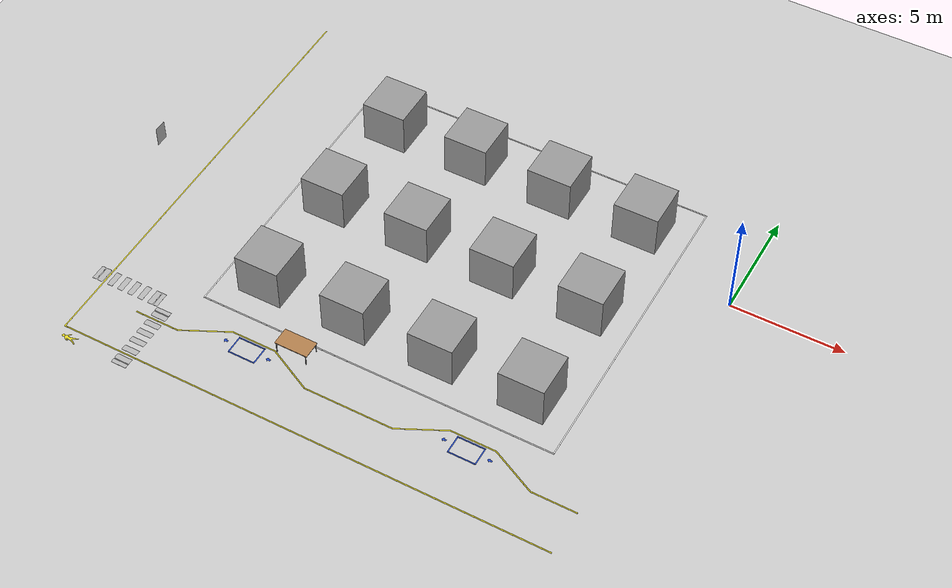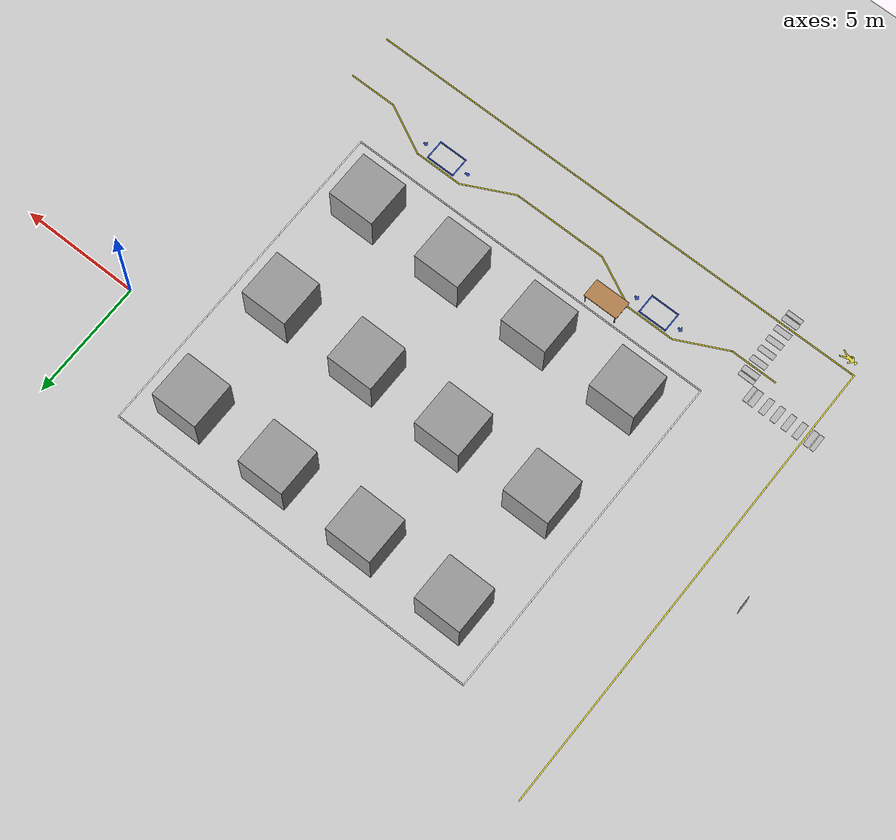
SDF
<sdf version="1.6">
 <world name="default">
  <model name="ground_plane">
   <static>1</static>
   <link name="link">
    <collision name="collision">
     <geometry><plane><normal>0 0 1</normal><size>100 100</size></plane></geometry>
     <surface><friction><ode><mu>100</mu><mu2>50</mu2></ode></friction></surface>
    </collision>
    <visual name="visual">
     <cast_shadows>0</cast_shadows>
     <geometry><plane><normal>0 0 1</normal><size>100 100</size></plane></geometry>
     <material>
      <script><uri>file://media/materials/scripts/gazebo.material</uri><name>Gazebo/Grey</name></script>
     </material>
    </visual>
   </link>
  </model>
  <model name="line20m">
   <link name="link_0">
    <inertial>
     <mass>1</mass>
     <inertia>
      <ixx>0.166667</ixx>
      <ixy>0</ixy>
      <ixz>0</ixz>
      <iyy>0.166667</iyy>
      <iyz>0</iyz>
      <izz>0.166667</izz>
     </inertia>
    </inertial>
    <visual name="visual">
     <geometry><box><size>0.05 20 0.001</size></box></geometry>
     <material>
      <lighting>1</lighting>
      <script><uri>file://media/materials/scripts/gazebo.material</uri><name>Gazebo/Yellow</name></script>
     </material>
    </visual>
   </link>
   <static>1</static>
   <pose>-22.9002 -3.99821 0 0 -0 0</pose>
  </model>
  <model name="lineWwaitSpot_0">
   <model name="waitSpotWDirection">
    <model name="directionArrow">
     <link name="link_0">
      <inertial>
       <mass>1</mass>
       <inertia>
        <ixx>0.166667</ixx>
        <ixy>0</ixy>
        <ixz>0</ixz>
        <iyy>0.166667</iyy>
        <iyz>0</iyz>
        <izz>0.166667</izz>
       </inertia>
      </inertial>
      <visual name="visual">
       <pose>-0.1 0.018 0 0 -0 -1.5708</pose>
       <geometry>
        <mesh><uri>model://directionArrow/model/model.dae</uri><scale>0.05 0.05 0.001</scale></mesh>
       </geometry>
       <material>
        <lighting>1</lighting>
        <script><uri>file://media/materials/scripts/gazebo.material</uri><name>Gazebo/Blue</name></script>
       </material>
      </visual>
     </link>
     <static>1</static>
     <pose>-1.00461 -0.000715 0 0 -0 0</pose>
    </model>
    <model name="directionArrow_0">
     <link name="link_0">
      <inertial>
       <mass>1</mass>
       <inertia>
        <ixx>0.166667</ixx>
        <ixy>0</ixy>
        <ixz>0</ixz>
        <iyy>0.166667</iyy>
        <iyz>0</iyz>
        <izz>0.166667</izz>
       </inertia>
      </inertial>
      <visual name="visual">
       <pose>-0.1 0.018 0 0 -0 -1.5708</pose>
       <geometry>
        <mesh><uri>model://directionArrow/model/model.dae</uri><scale>0.05 0.05 0.001</scale></mesh>
       </geometry>
       <material>
        <lighting>1</lighting>
        <script><uri>file://media/materials/scripts/gazebo.material</uri><name>Gazebo/Blue</name></script>
       </material>
      </visual>
     </link>
     <static>1</static>
     <pose>1.00339 -0.000935 0 0 -0 0</pose>
    </model>
    <model name="waitSpot">
     <link name="link_4">
      <inertial>
       <mass>1</mass>
       <inertia>
        <ixx>0.166667</ixx>
        <ixy>0</ixy>
        <ixz>0</ixz>
        <iyy>0.166667</iyy>
        <iyz>0</iyz>
        <izz>0.166667</izz>
       </inertia>
      </inertial>
      <visual name="ModelPreview_8::link_4::visual_3">
       <pose>-0.6 0 0 0 -0 0</pose>
       <geometry><box><size>0.05 0.8 0.001</size></box></geometry>
       <material>
        <lighting>1</lighting>
        <script><uri>file://media/materials/scripts/gazebo.material</uri><name>Gazebo/Blue</name></script>
       </material>
      </visual>
      <visual name="ModelPreview_8::link_4::visual_1">
       <pose>0 -0.4 0 0 -0 0</pose>
       <geometry><box><size>1.25 0.05 0.001</size></box></geometry>
       <material>
        <lighting>1</lighting>
        <script><uri>file://media/materials/scripts/gazebo.material</uri><name>Gazebo/Blue</name></script>
       </material>
      </visual>
      <visual name="ModelPreview_8::link_4::visual_2">
       <pose>0.6 0 0 0 -0 0</pose>
       <geometry><box><size>0.05 0.8 0.001</size></box></geometry>
       <material>
        <lighting>1</lighting>
        <script><uri>file://media/materials/scripts/gazebo.material</uri><name>Gazebo/Blue</name></script>
       </material>
      </visual>
      <visual name="visual">
       <pose>0 0.4 0 0 -0 0</pose>
       <geometry><box><size>1.25 0.05 0.001</size></box></geometry>
       <material>
        <lighting>1</lighting>
        <script><uri>file://media/materials/scripts/gazebo.material</uri><name>Gazebo/Blue</name></script>
       </material>
      </visual>
     </link>
     <static>1</static>
     <pose>0.001226 0.00165 0 0 -0 0</pose>
    </model>
    <static>1</static>
    <pose>-5 -0.16 0 0 -0 0</pose>
   </model>
   <model name="roadWwait">
    <link name="link_0">
     <inertial>
      <mass>1</mass>
      <inertia>
       <ixx>0.166667</ixx>
       <ixy>0</ixy>
       <ixz>0</ixz>
       <iyy>0.166667</iyy>
       <iyz>0</iyz>
       <izz>0.166667</izz>
      </inertia>
     </inertial>
     <visual name="ModelPreview_0::link_0::visual_2">
      <pose>-3 -0.5 0 0 -0 0.463647</pose>
      <geometry><box><size>2.265 0.05 0.001</size></box></geometry>
      <material>
       <lighting>1</lighting>
       <script><uri>file://media/materials/scripts/gazebo.material</uri><name>Gazebo/Yellow</name></script>
      </material>
     </visual>
     <visual name="ModelPreview_0::link_0::visual_3">
      <pose>5 -1 0 0 -0 0</pose>
      <geometry><box><size>2 0.05 0.001</size></box></geometry>
      <material>
       <lighting>1</lighting>
       <script><uri>file://media/materials/scripts/gazebo.material</uri><name>Gazebo/Yellow</name></script>
      </material>
     </visual>
     <visual name="visual">
      <geometry><box><size>4 0.05 0.001</size></box></geometry>
      <material>
       <lighting>1</lighting>
       <script><uri>file://media/materials/scripts/gazebo.material</uri><name>Gazebo/Yellow</name></script>
      </material>
     </visual>
     <visual name="ModelPreview_0::link_0::visual_1">
      <pose>3 -0.5 0 0 0 -0.463647</pose>
      <geometry><box><size>2.265 0.05 0.001</size></box></geometry>
      <material>
       <lighting>1</lighting>
       <script><uri>file://media/materials/scripts/gazebo.material</uri><name>Gazebo/Yellow</name></script>
      </material>
     </visual>
     <visual name="ModelPreview_0::link_0::visual_4">
      <pose>-5 -1 0 0 -0 0</pose>
      <geometry><box><size>2 0.05 0.001</size></box></geometry>
      <material>
       <lighting>1</lighting>
       <script><uri>file://media/materials/scripts/gazebo.material</uri><name>Gazebo/Yellow</name></script>
      </material>
     </visual>
     <visual name="ModelPreview_0::link_0::visual_5">
      <pose>7 -0.5 0 0 -0 0.463647</pose>
      <geometry><box><size>2.265 0.05 0.001</size></box></geometry>
      <material>
       <lighting>1</lighting>
       <script><uri>file://media/materials/scripts/gazebo.material</uri><name>Gazebo/Yellow</name></script>
      </material>
     </visual>
     <visual name="ModelPreview_0::link_0::visual_6">
      <pose>-7 -0.5 0 0 0 -0.463647</pose>
      <geometry><box><size>2.265 0.05 0.001</size></box></geometry>
      <material>
       <lighting>1</lighting>
       <script><uri>file://media/materials/scripts/gazebo.material</uri><name>Gazebo/Yellow</name></script>
      </material>
     </visual>
     <visual name="ModelPreview_0::link_0::visual_7">
      <pose>9 0 0 0 -0 0</pose>
      <geometry><box><size>2 0.05 0.001</size></box></geometry>
      <material>
       <lighting>1</lighting>
       <script><uri>file://media/materials/scripts/gazebo.material</uri><name>Gazebo/Yellow</name></script>
      </material>
     </visual>
     <visual name="ModelPreview_0::link_0::visual_8">
      <pose>-9 0 0 0 -0 0</pose>
      <geometry><box><size>2 0.05 0.001</size></box></geometry>
      <material>
       <lighting>1</lighting>
       <script><uri>file://media/materials/scripts/gazebo.material</uri><name>Gazebo/Yellow</name></script>
      </material>
     </visual>
    </link>
    <static>1</static>
    <pose>-0.002412 0.326587 0 0 -0 0</pose>
   </model>
   <model name="waitSpotWDirection_0">
    <model name="directionArrow">
     <link name="link_0">
      <inertial>
       <mass>1</mass>
       <inertia>
        <ixx>0.166667</ixx>
        <ixy>0</ixy>
        <ixz>0</ixz>
        <iyy>0.166667</iyy>
        <iyz>0</iyz>
        <izz>0.166667</izz>
       </inertia>
      </inertial>
      <visual name="visual">
       <pose>-0.1 0.018 0 0 -0 -1.5708</pose>
       <geometry>
        <mesh><uri>model://directionArrow/model/model.dae</uri><scale>0.05 0.05 0.001</scale></mesh>
       </geometry>
       <material>
        <lighting>1</lighting>
        <script><uri>file://media/materials/scripts/gazebo.material</uri><name>Gazebo/Blue</name></script>
       </material>
      </visual>
     </link>
     <static>1</static>
     <pose>-1.00461 -0.000715 0 0 -0 0</pose>
    </model>
    <model name="directionArrow_0">
     <link name="link_0">
      <inertial>
       <mass>1</mass>
       <inertia>
        <ixx>0.166667</ixx>
        <ixy>0</ixy>
        <ixz>0</ixz>
        <iyy>0.166667</iyy>
        <iyz>0</iyz>
        <izz>0.166667</izz>
       </inertia>
      </inertial>
      <visual name="visual">
       <pose>-0.1 0.018 0 0 -0 -1.5708</pose>
       <geometry>
        <mesh><uri>model://directionArrow/model/model.dae</uri><scale>0.05 0.05 0.001</scale></mesh>
       </geometry>
       <material>
        <lighting>1</lighting>
        <script><uri>file://media/materials/scripts/gazebo.material</uri><name>Gazebo/Blue</name></script>
       </material>
      </visual>
     </link>
     <static>1</static>
     <pose>1.00339 -0.000935 0 0 -0 0</pose>
    </model>
    <model name="waitSpot">
     <link name="link_4">
      <inertial>
       <mass>1</mass>
       <inertia>
        <ixx>0.166667</ixx>
        <ixy>0</ixy>
        <ixz>0</ixz>
        <iyy>0.166667</iyy>
        <iyz>0</iyz>
        <izz>0.166667</izz>
       </inertia>
      </inertial>
      <visual name="ModelPreview_8::link_4::visual_3">
       <pose>-0.6 0 0 0 -0 0</pose>
       <geometry><box><size>0.05 0.8 0.001</size></box></geometry>
       <material>
        <lighting>1</lighting>
        <script><uri>file://media/materials/scripts/gazebo.material</uri><name>Gazebo/Blue</name></script>
       </material>
      </visual>
      <visual name="ModelPreview_8::link_4::visual_1">
       <pose>0 -0.4 0 0 -0 0</pose>
       <geometry><box><size>1.25 0.05 0.001</size></box></geometry>
       <material>
        <lighting>1</lighting>
        <script><uri>file://media/materials/scripts/gazebo.material</uri><name>Gazebo/Blue</name></script>
       </material>
      </visual>
      <visual name="ModelPreview_8::link_4::visual_2">
       <pose>0.6 0 0 0 -0 0</pose>
       <geometry><box><size>0.05 0.8 0.001</size></box></geometry>
       <material>
        <lighting>1</lighting>
        <script><uri>file://media/materials/scripts/gazebo.material</uri><name>Gazebo/Blue</name></script>
       </material>
      </visual>
      <visual name="visual">
       <pose>0 0.4 0 0 -0 0</pose>
       <geometry><box><size>1.25 0.05 0.001</size></box></geometry>
       <material>
        <lighting>1</lighting>
        <script><uri>file://media/materials/scripts/gazebo.material</uri><name>Gazebo/Blue</name></script>
       </material>
      </visual>
     </link>
     <static>1</static>
     <pose>0.001226 0.00165 0 0 -0 0</pose>
    </model>
    <static>1</static>
    <pose>5 -0.16 0 0 -0 0</pose>
   </model>
   <static>1</static>
   <pose>-10.83 -11.6377 0 0 0 -3.14159</pose>
  </model>
  <model name="CNCUnit">
   <link name="link_2">
    <inertial>
     <mass>1</mass>
     <inertia>
      <ixx>0.166667</ixx>
      <ixy>0</ixy>
      <ixz>0</ixz>
      <iyy>0.166667</iyy>
      <iyz>0</iyz>
      <izz>0.166667</izz>
     </inertia>
    </inertial>
    <visual name="ModelPreview_4::link_2::visual_2">
     <pose>-2 0 1 0 -0 0</pose>
     <geometry><box><size>2 2 2</size></box></geometry>
     <material>
      <lighting>1</lighting>
      <script><uri>file://media/materials/scripts/gazebo.material</uri><name>Gazebo/Grey</name></script>
      <shader type="vertex"><normal_map>__default__</normal_map></shader>
      <ambient>0.3 0.3 0.3 1</ambient>
      <diffuse>0.7 0.7 0.7 1</diffuse>
      <specular>0.01 0.01 0.01 1</specular>
      <emissive>0 0 0 1</emissive>
     </material>
    </visual>
    <visual name="ModelPreview_4::link_2::visual_5">
     <pose>-2 5 1 0 -0 0</pose>
     <geometry><box><size>2 2 2</size></box></geometry>
     <material>
      <lighting>1</lighting>
      <script><uri>file://media/materials/scripts/gazebo.material</uri><name>Gazebo/Grey</name></script>
      <shader type="vertex"><normal_map>__default__</normal_map></shader>
      <ambient>0.3 0.3 0.3 1</ambient>
      <diffuse>0.7 0.7 0.7 1</diffuse>
      <specular>0.01 0.01 0.01 1</specular>
      <emissive>0 0 0 1</emissive>
     </material>
    </visual>
    <visual name="ModelPreview_4::link_2::visual_6">
     <pose>2 5 1 0 -0 0</pose>
     <geometry><box><size>2 2 2</size></box></geometry>
     <material>
      <lighting>1</lighting>
      <script><uri>file://media/materials/scripts/gazebo.material</uri><name>Gazebo/Grey</name></script>
      <shader type="vertex"><normal_map>__default__</normal_map></shader>
      <ambient>0.3 0.3 0.3 1</ambient>
      <diffuse>0.7 0.7 0.7 1</diffuse>
      <specular>0.01 0.01 0.01 1</specular>
      <emissive>0 0 0 1</emissive>
     </material>
    </visual>
    <visual name="ModelPreview_4::link_2::visual_1">
     <pose>6 0 1 0 -0 0</pose>
     <geometry><box><size>2 2 2</size></box></geometry>
     <material>
      <lighting>1</lighting>
      <script><uri>file://media/materials/scripts/gazebo.material</uri><name>Gazebo/Grey</name></script>
      <shader type="vertex"><normal_map>__default__</normal_map></shader>
      <ambient>0.3 0.3 0.3 1</ambient>
      <diffuse>0.7 0.7 0.7 1</diffuse>
      <specular>0.01 0.01 0.01 1</specular>
      <emissive>0 0 0 1</emissive>
     </material>
    </visual>
    <visual name="visual">
     <pose>2 0 1 0 -0 0</pose>
     <geometry><box><size>2 2 2</size></box></geometry>
     <material>
      <lighting>1</lighting>
      <script><uri>file://media/materials/scripts/gazebo.material</uri><name>Gazebo/Grey</name></script>
      <shader type="vertex"><normal_map>__default__</normal_map></shader>
      <ambient>0.3 0.3 0.3 1</ambient>
      <diffuse>0.7 0.7 0.7 1</diffuse>
      <specular>0.01 0.01 0.01 1</specular>
      <emissive>0 0 0 1</emissive>
     </material>
    </visual>
    <visual name="ModelPreview_4::link_2::visual_4">
     <pose>-6 5 1 0 -0 0</pose>
     <geometry><box><size>2 2 2</size></box></geometry>
     <material>
      <lighting>1</lighting>
      <script><uri>file://media/materials/scripts/gazebo.material</uri><name>Gazebo/Grey</name></script>
      <shader type="vertex"><normal_map>__default__</normal_map></shader>
      <ambient>0.3 0.3 0.3 1</ambient>
      <diffuse>0.7 0.7 0.7 1</diffuse>
      <specular>0.01 0.01 0.01 1</specular>
      <emissive>0 0 0 1</emissive>
     </material>
    </visual>
    <visual name="ModelPreview_4::link_2::visual_7">
     <pose>6 5 1 0 -0 0</pose>
     <geometry><box><size>2 2 2</size></box></geometry>
     <material>
      <lighting>1</lighting>
      <script><uri>file://media/materials/scripts/gazebo.material</uri><name>Gazebo/Grey</name></script>
      <shader type="vertex"><normal_map>__default__</normal_map></shader>
      <ambient>0.3 0.3 0.3 1</ambient>
      <diffuse>0.7 0.7 0.7 1</diffuse>
      <specular>0.01 0.01 0.01 1</specular>
      <emissive>0 0 0 1</emissive>
     </material>
    </visual>
    <visual name="ModelPreview_4::link_2::visual_3">
     <pose>-6 0 1 0 -0 0</pose>
     <geometry><box><size>2 2 2</size></box></geometry>
     <material>
      <lighting>1</lighting>
      <script><uri>file://media/materials/scripts/gazebo.material</uri><name>Gazebo/Grey</name></script>
      <shader type="vertex"><normal_map>__default__</normal_map></shader>
      <ambient>0.3 0.3 0.3 1</ambient>
      <diffuse>0.7 0.7 0.7 1</diffuse>
      <specular>0.01 0.01 0.01 1</specular>
      <emissive>0 0 0 1</emissive>
     </material>
    </visual>
    <visual name="ModelPreview_4::link_2::visual_8">
     <pose>-6 -5 1 0 -0 0</pose>
     <geometry><box><size>2 2 2</size></box></geometry>
     <material>
      <lighting>1</lighting>
      <script><uri>file://media/materials/scripts/gazebo.material</uri><name>Gazebo/Grey</name></script>
      <shader type="vertex"><normal_map>__default__</normal_map></shader>
      <ambient>0.3 0.3 0.3 1</ambient>
      <diffuse>0.7 0.7 0.7 1</diffuse>
      <specular>0.01 0.01 0.01 1</specular>
      <emissive>0 0 0 1</emissive>
     </material>
    </visual>
    <visual name="ModelPreview_4::link_2::visual_9">
     <pose>-2 -5 1 0 -0 0</pose>
     <geometry><box><size>2 2 2</size></box></geometry>
     <material>
      <lighting>1</lighting>
      <script><uri>file://media/materials/scripts/gazebo.material</uri><name>Gazebo/Grey</name></script>
      <shader type="vertex"><normal_map>__default__</normal_map></shader>
      <ambient>0.3 0.3 0.3 1</ambient>
      <diffuse>0.7 0.7 0.7 1</diffuse>
      <specular>0.01 0.01 0.01 1</specular>
      <emissive>0 0 0 1</emissive>
     </material>
    </visual>
    <visual name="ModelPreview_4::link_2::visual_10">
     <pose>2 -5 1 0 -0 0</pose>
     <geometry><box><size>2 2 2</size></box></geometry>
     <material>
      <lighting>1</lighting>
      <script><uri>file://media/materials/scripts/gazebo.material</uri><name>Gazebo/Grey</name></script>
      <shader type="vertex"><normal_map>__default__</normal_map></shader>
      <ambient>0.3 0.3 0.3 1</ambient>
      <diffuse>0.7 0.7 0.7 1</diffuse>
      <specular>0.01 0.01 0.01 1</specular>
      <emissive>0 0 0 1</emissive>
     </material>
    </visual>
    <visual name="ModelPreview_4::link_2::visual_11">
     <pose>6 -5 1 0 -0 0</pose>
     <geometry><box><size>2 2 2</size></box></geometry>
     <material>
      <lighting>1</lighting>
      <script><uri>file://media/materials/scripts/gazebo.material</uri><name>Gazebo/Grey</name></script>
      <shader type="vertex"><normal_map>__default__</normal_map></shader>
      <ambient>0.3 0.3 0.3 1</ambient>
      <diffuse>0.7 0.7 0.7 1</diffuse>
      <specular>0.01 0.01 0.01 1</specular>
      <emissive>0 0 0 1</emissive>
     </material>
    </visual>
    <visual name="ModelPreview_4::link_2::visual_12">
     <pose>0 -7 0 0 -0 0</pose>
     <geometry><box><size>16.05 0.05 0.001</size></box></geometry>
     <material>
      <lighting>1</lighting>
      <script><uri>file://media/materials/scripts/gazebo.material</uri><name>Gazebo/White</name></script>
     </material>
    </visual>
    <visual name="ModelPreview_4::link_2::visual_13">
     <pose>0 7 0 0 -0 0</pose>
     <geometry><box><size>16.05 0.05 0.001</size></box></geometry>
     <material>
      <lighting>1</lighting>
      <script><uri>file://media/materials/scripts/gazebo.material</uri><name>Gazebo/White</name></script>
     </material>
    </visual>
    <visual name="ModelPreview_4::link_2::visual_14">
     <pose>8 0 0 0 -0 0</pose>
     <geometry><box><size>0.05 14 0.001</size></box></geometry>
     <material>
      <lighting>1</lighting>
      <script><uri>file://media/materials/scripts/gazebo.material</uri><name>Gazebo/White</name></script>
      <emissive>0 0 0 1</emissive>
     </material>
    </visual>
    <visual name="ModelPreview_4::link_2::visual_15">
     <pose>-8 0 0 0 -0 0</pose>
     <geometry><box><size>0.05 14 0.001</size></box></geometry>
     <material>
      <lighting>1</lighting>
      <script><uri>file://media/materials/scripts/gazebo.material</uri><name>Gazebo/White</name></script>
     </material>
    </visual>
    <collision name="collision_9">
     <pose>6 -5 1 0 -0 0</pose>
     <geometry><box><size>2 2 2</size></box></geometry>
     <surface>
      <friction>
       <ode><mu>1</mu><mu2>1</mu2><fdir1>0 0 0</fdir1><slip1>0</slip1><slip2>0</slip2></ode>
       <torsional>
        <coefficient>1</coefficient>
        <patch_radius>0</patch_radius>
        <surface_radius>0</surface_radius>
        <use_patch_radius>1</use_patch_radius>
        <ode><slip>0</slip></ode>
       </torsional>
      </friction>
      <bounce><restitution_coefficient>0</restitution_coefficient><threshold>1e+06</threshold></bounce>
      <contact>
       <collide_without_contact>0</collide_without_contact>
       <collide_without_contact_bitmask>1</collide_without_contact_bitmask>
       <collide_bitmask>1</collide_bitmask>
       <ode>
        <soft_cfm>0</soft_cfm>
        <soft_erp>0.2</soft_erp>
        <kp>1e+13</kp>
        <kd>1</kd>
        <max_vel>0.01</max_vel>
        <min_depth>0</min_depth>
       </ode>
       <bullet>
        <split_impulse>1</split_impulse>
        <split_impulse_penetration_threshold>-0.01</split_impulse_penetration_threshold>
        <soft_cfm>0</soft_cfm>
        <soft_erp>0.2</soft_erp>
        <kp>1e+13</kp>
        <kd>1</kd>
       </bullet>
      </contact>
     </surface>
    </collision>
    <collision name="collision_6">
     <pose>-2 5 1 0 -0 0</pose>
     <geometry><box><size>2 2 2</size></box></geometry>
     <surface>
      <friction>
       <ode><mu>1</mu><mu2>1</mu2><fdir1>0 0 0</fdir1><slip1>0</slip1><slip2>0</slip2></ode>
       <torsional>
        <coefficient>1</coefficient>
        <patch_radius>0</patch_radius>
        <surface_radius>0</surface_radius>
        <use_patch_radius>1</use_patch_radius>
        <ode><slip>0</slip></ode>
       </torsional>
      </friction>
      <bounce><restitution_coefficient>0</restitution_coefficient><threshold>1e+06</threshold></bounce>
      <contact>
       <collide_without_contact>0</collide_without_contact>
       <collide_without_contact_bitmask>1</collide_without_contact_bitmask>
       <collide_bitmask>1</collide_bitmask>
       <ode>
        <soft_cfm>0</soft_cfm>
        <soft_erp>0.2</soft_erp>
        <kp>1e+13</kp>
        <kd>1</kd>
        <max_vel>0.01</max_vel>
        <min_depth>0</min_depth>
       </ode>
       <bullet>
        <split_impulse>1</split_impulse>
        <split_impulse_penetration_threshold>-0.01</split_impulse_penetration_threshold>
        <soft_cfm>0</soft_cfm>
        <soft_erp>0.2</soft_erp>
        <kp>1e+13</kp>
        <kd>1</kd>
       </bullet>
      </contact>
     </surface>
    </collision>
    <collision name="collision">
     <pose>2 0 1 0 -0 0</pose>
     <geometry><box><size>2 2 2</size></box></geometry>
     <surface>
      <friction>
       <ode><mu>1</mu><mu2>1</mu2><fdir1>0 0 0</fdir1><slip1>0</slip1><slip2>0</slip2></ode>
       <torsional>
        <coefficient>1</coefficient>
        <patch_radius>0</patch_radius>
        <surface_radius>0</surface_radius>
        <use_patch_radius>1</use_patch_radius>
        <ode><slip>0</slip></ode>
       </torsional>
      </friction>
      <bounce><restitution_coefficient>0</restitution_coefficient><threshold>1e+06</threshold></bounce>
      <contact>
       <collide_without_contact>0</collide_without_contact>
       <collide_without_contact_bitmask>1</collide_without_contact_bitmask>
       <collide_bitmask>1</collide_bitmask>
       <ode>
        <soft_cfm>0</soft_cfm>
        <soft_erp>0.2</soft_erp>
        <kp>1e+13</kp>
        <kd>1</kd>
        <max_vel>0.01</max_vel>
        <min_depth>0</min_depth>
       </ode>
       <bullet>
        <split_impulse>1</split_impulse>
        <split_impulse_penetration_threshold>-0.01</split_impulse_penetration_threshold>
        <soft_cfm>0</soft_cfm>
        <soft_erp>0.2</soft_erp>
        <kp>1e+13</kp>
        <kd>1</kd>
       </bullet>
      </contact>
     </surface>
    </collision>
    <collision name="collision_10">
     <pose>-2 -5 1 0 -0 0</pose>
     <geometry><box><size>2 2 2</size></box></geometry>
     <surface>
      <friction>
       <ode><mu>1</mu><mu2>1</mu2><fdir1>0 0 0</fdir1><slip1>0</slip1><slip2>0</slip2></ode>
       <torsional>
        <coefficient>1</coefficient>
        <patch_radius>0</patch_radius>
        <surface_radius>0</surface_radius>
        <use_patch_radius>1</use_patch_radius>
        <ode><slip>0</slip></ode>
       </torsional>
      </friction>
      <bounce><restitution_coefficient>0</restitution_coefficient><threshold>1e+06</threshold></bounce>
      <contact>
       <collide_without_contact>0</collide_without_contact>
       <collide_without_contact_bitmask>1</collide_without_contact_bitmask>
       <collide_bitmask>1</collide_bitmask>
       <ode>
        <soft_cfm>0</soft_cfm>
        <soft_erp>0.2</soft_erp>
        <kp>1e+13</kp>
        <kd>1</kd>
        <max_vel>0.01</max_vel>
        <min_depth>0</min_depth>
       </ode>
       <bullet>
        <split_impulse>1</split_impulse>
        <split_impulse_penetration_threshold>-0.01</split_impulse_penetration_threshold>
        <soft_cfm>0</soft_cfm>
        <soft_erp>0.2</soft_erp>
        <kp>1e+13</kp>
        <kd>1</kd>
       </bullet>
      </contact>
     </surface>
    </collision>
    <collision name="collision_4">
     <pose>2 5 1 0 -0 0</pose>
     <geometry><box><size>2 2 2</size></box></geometry>
     <surface>
      <friction>
       <ode><mu>1</mu><mu2>1</mu2><fdir1>0 0 0</fdir1><slip1>0</slip1><slip2>0</slip2></ode>
       <torsional>
        <coefficient>1</coefficient>
        <patch_radius>0</patch_radius>
        <surface_radius>0</surface_radius>
        <use_patch_radius>1</use_patch_radius>
        <ode><slip>0</slip></ode>
       </torsional>
      </friction>
      <bounce><restitution_coefficient>0</restitution_coefficient><threshold>1e+06</threshold></bounce>
      <contact>
       <collide_without_contact>0</collide_without_contact>
       <collide_without_contact_bitmask>1</collide_without_contact_bitmask>
       <collide_bitmask>1</collide_bitmask>
       <ode>
        <soft_cfm>0</soft_cfm>
        <soft_erp>0.2</soft_erp>
        <kp>1e+13</kp>
        <kd>1</kd>
        <max_vel>0.01</max_vel>
        <min_depth>0</min_depth>
       </ode>
       <bullet>
        <split_impulse>1</split_impulse>
        <split_impulse_penetration_threshold>-0.01</split_impulse_penetration_threshold>
        <soft_cfm>0</soft_cfm>
        <soft_erp>0.2</soft_erp>
        <kp>1e+13</kp>
        <kd>1</kd>
       </bullet>
      </contact>
     </surface>
    </collision>
    <collision name="collision_7">
     <pose>-6 5 1 0 -0 0</pose>
     <geometry><box><size>2 2 2</size></box></geometry>
     <surface>
      <friction>
       <ode><mu>1</mu><mu2>1</mu2><fdir1>0 0 0</fdir1><slip1>0</slip1><slip2>0</slip2></ode>
       <torsional>
        <coefficient>1</coefficient>
        <patch_radius>0</patch_radius>
        <surface_radius>0</surface_radius>
        <use_patch_radius>1</use_patch_radius>
        <ode><slip>0</slip></ode>
       </torsional>
      </friction>
      <bounce><restitution_coefficient>0</restitution_coefficient><threshold>1e+06</threshold></bounce>
      <contact>
       <collide_without_contact>0</collide_without_contact>
       <collide_without_contact_bitmask>1</collide_without_contact_bitmask>
       <collide_bitmask>1</collide_bitmask>
       <ode>
        <soft_cfm>0</soft_cfm>
        <soft_erp>0.2</soft_erp>
        <kp>1e+13</kp>
        <kd>1</kd>
        <max_vel>0.01</max_vel>
        <min_depth>0</min_depth>
       </ode>
       <bullet>
        <split_impulse>1</split_impulse>
        <split_impulse_penetration_threshold>-0.01</split_impulse_penetration_threshold>
        <soft_cfm>0</soft_cfm>
        <soft_erp>0.2</soft_erp>
        <kp>1e+13</kp>
        <kd>1</kd>
       </bullet>
      </contact>
     </surface>
    </collision>
    <collision name="collision_1">
     <pose>-2 0 1 0 -0 0</pose>
     <geometry><box><size>2 2 2</size></box></geometry>
     <surface>
      <friction>
       <ode><mu>1</mu><mu2>1</mu2><fdir1>0 0 0</fdir1><slip1>0</slip1><slip2>0</slip2></ode>
       <torsional>
        <coefficient>1</coefficient>
        <patch_radius>0</patch_radius>
        <surface_radius>0</surface_radius>
        <use_patch_radius>1</use_patch_radius>
        <ode><slip>0</slip></ode>
       </torsional>
      </friction>
      <bounce><restitution_coefficient>0</restitution_coefficient><threshold>1e+06</threshold></bounce>
      <contact>
       <collide_without_contact>0</collide_without_contact>
       <collide_without_contact_bitmask>1</collide_without_contact_bitmask>
       <collide_bitmask>1</collide_bitmask>
       <ode>
        <soft_cfm>0</soft_cfm>
        <soft_erp>0.2</soft_erp>
        <kp>1e+13</kp>
        <kd>1</kd>
        <max_vel>0.01</max_vel>
        <min_depth>0</min_depth>
       </ode>
       <bullet>
        <split_impulse>1</split_impulse>
        <split_impulse_penetration_threshold>-0.01</split_impulse_penetration_threshold>
        <soft_cfm>0</soft_cfm>
        <soft_erp>0.2</soft_erp>
        <kp>1e+13</kp>
        <kd>1</kd>
       </bullet>
      </contact>
     </surface>
    </collision>
    <collision name="collision_5">
     <pose>6 5 1 0 -0 0</pose>
     <geometry><box><size>2 2 2</size></box></geometry>
     <surface>
      <friction>
       <ode><mu>1</mu><mu2>1</mu2><fdir1>0 0 0</fdir1><slip1>0</slip1><slip2>0</slip2></ode>
       <torsional>
        <coefficient>1</coefficient>
        <patch_radius>0</patch_radius>
        <surface_radius>0</surface_radius>
        <use_patch_radius>1</use_patch_radius>
        <ode><slip>0</slip></ode>
       </torsional>
      </friction>
      <bounce><restitution_coefficient>0</restitution_coefficient><threshold>1e+06</threshold></bounce>
      <contact>
       <collide_without_contact>0</collide_without_contact>
       <collide_without_contact_bitmask>1</collide_without_contact_bitmask>
       <collide_bitmask>1</collide_bitmask>
       <ode>
        <soft_cfm>0</soft_cfm>
        <soft_erp>0.2</soft_erp>
        <kp>1e+13</kp>
        <kd>1</kd>
        <max_vel>0.01</max_vel>
        <min_depth>0</min_depth>
       </ode>
       <bullet>
        <split_impulse>1</split_impulse>
        <split_impulse_penetration_threshold>-0.01</split_impulse_penetration_threshold>
        <soft_cfm>0</soft_cfm>
        <soft_erp>0.2</soft_erp>
        <kp>1e+13</kp>
        <kd>1</kd>
       </bullet>
      </contact>
     </surface>
    </collision>
    <collision name="collision_3">
     <pose>6 0 1 0 -0 0</pose>
     <geometry><box><size>2 2 2</size></box></geometry>
     <surface>
      <friction>
       <ode><mu>1</mu><mu2>1</mu2><fdir1>0 0 0</fdir1><slip1>0</slip1><slip2>0</slip2></ode>
       <torsional>
        <coefficient>1</coefficient>
        <patch_radius>0</patch_radius>
        <surface_radius>0</surface_radius>
        <use_patch_radius>1</use_patch_radius>
        <ode><slip>0</slip></ode>
       </torsional>
      </friction>
      <bounce><restitution_coefficient>0</restitution_coefficient><threshold>1e+06</threshold></bounce>
      <contact>
       <collide_without_contact>0</collide_without_contact>
       <collide_without_contact_bitmask>1</collide_without_contact_bitmask>
       <collide_bitmask>1</collide_bitmask>
       <ode>
        <soft_cfm>0</soft_cfm>
        <soft_erp>0.2</soft_erp>
        <kp>1e+13</kp>
        <kd>1</kd>
        <max_vel>0.01</max_vel>
        <min_depth>0</min_depth>
       </ode>
       <bullet>
        <split_impulse>1</split_impulse>
        <split_impulse_penetration_threshold>-0.01</split_impulse_penetration_threshold>
        <soft_cfm>0</soft_cfm>
        <soft_erp>0.2</soft_erp>
        <kp>1e+13</kp>
        <kd>1</kd>
       </bullet>
      </contact>
     </surface>
    </collision>
    <collision name="collision_2">
     <pose>-6 0 1 0 -0 0</pose>
     <geometry><box><size>2 2 2</size></box></geometry>
     <surface>
      <friction>
       <ode><mu>1</mu><mu2>1</mu2><fdir1>0 0 0</fdir1><slip1>0</slip1><slip2>0</slip2></ode>
       <torsional>
        <coefficient>1</coefficient>
        <patch_radius>0</patch_radius>
        <surface_radius>0</surface_radius>
        <use_patch_radius>1</use_patch_radius>
        <ode><slip>0</slip></ode>
       </torsional>
      </friction>
      <bounce><restitution_coefficient>0</restitution_coefficient><threshold>1e+06</threshold></bounce>
      <contact>
       <collide_without_contact>0</collide_without_contact>
       <collide_without_contact_bitmask>1</collide_without_contact_bitmask>
       <collide_bitmask>1</collide_bitmask>
       <ode>
        <soft_cfm>0</soft_cfm>
        <soft_erp>0.2</soft_erp>
        <kp>1e+13</kp>
        <kd>1</kd>
        <max_vel>0.01</max_vel>
        <min_depth>0</min_depth>
       </ode>
       <bullet>
        <split_impulse>1</split_impulse>
        <split_impulse_penetration_threshold>-0.01</split_impulse_penetration_threshold>
        <soft_cfm>0</soft_cfm>
        <soft_erp>0.2</soft_erp>
        <kp>1e+13</kp>
        <kd>1</kd>
       </bullet>
      </contact>
     </surface>
    </collision>
    <collision name="collision_8">
     <pose>2 -5 1 0 -0 0</pose>
     <geometry><box><size>2 2 2</size></box></geometry>
     <surface>
      <friction>
       <ode><mu>1</mu><mu2>1</mu2><fdir1>0 0 0</fdir1><slip1>0</slip1><slip2>0</slip2></ode>
       <torsional>
        <coefficient>1</coefficient>
        <patch_radius>0</patch_radius>
        <surface_radius>0</surface_radius>
        <use_patch_radius>1</use_patch_radius>
        <ode><slip>0</slip></ode>
       </torsional>
      </friction>
      <bounce><restitution_coefficient>0</restitution_coefficient><threshold>1e+06</threshold></bounce>
      <contact>
       <collide_without_contact>0</collide_without_contact>
       <collide_without_contact_bitmask>1</collide_without_contact_bitmask>
       <collide_bitmask>1</collide_bitmask>
       <ode>
        <soft_cfm>0</soft_cfm>
        <soft_erp>0.2</soft_erp>
        <kp>1e+13</kp>
        <kd>1</kd>
        <max_vel>0.01</max_vel>
        <min_depth>0</min_depth>
       </ode>
       <bullet>
        <split_impulse>1</split_impulse>
        <split_impulse_penetration_threshold>-0.01</split_impulse_penetration_threshold>
        <soft_cfm>0</soft_cfm>
        <soft_erp>0.2</soft_erp>
        <kp>1e+13</kp>
        <kd>1</kd>
       </bullet>
      </contact>
     </surface>
    </collision>
    <collision name="collision_11">
     <pose>-6 -5 1 0 -0 0</pose>
     <geometry><box><size>2 2 2</size></box></geometry>
     <surface>
      <friction>
       <ode><mu>1</mu><mu2>1</mu2><fdir1>0 0 0</fdir1><slip1>0</slip1><slip2>0</slip2></ode>
       <torsional>
        <coefficient>1</coefficient>
        <patch_radius>0</patch_radius>
        <surface_radius>0</surface_radius>
        <use_patch_radius>1</use_patch_radius>
        <ode><slip>0</slip></ode>
       </torsional>
      </friction>
      <bounce><restitution_coefficient>0</restitution_coefficient><threshold>1e+06</threshold></bounce>
      <contact>
       <collide_without_contact>0</collide_without_contact>
       <collide_without_contact_bitmask>1</collide_without_contact_bitmask>
       <collide_bitmask>1</collide_bitmask>
       <ode>
        <soft_cfm>0</soft_cfm>
        <soft_erp>0.2</soft_erp>
        <kp>1e+13</kp>
        <kd>1</kd>
        <max_vel>0.01</max_vel>
        <min_depth>0</min_depth>
       </ode>
       <bullet>
        <split_impulse>1</split_impulse>
        <split_impulse_penetration_threshold>-0.01</split_impulse_penetration_threshold>
        <soft_cfm>0</soft_cfm>
        <soft_erp>0.2</soft_erp>
        <kp>1e+13</kp>
        <kd>1</kd>
       </bullet>
      </contact>
     </surface>
    </collision>
    <collision name="collision_12">
     <pose>0 7 0 0 -0 0</pose>
     <geometry><box><size>16.05 0.05 0.001</size></box></geometry>
     <surface>
      <friction>
       <ode><mu>1</mu><mu2>1</mu2><fdir1>0 0 0</fdir1><slip1>0</slip1><slip2>0</slip2></ode>
       <torsional>
        <coefficient>1</coefficient>
        <patch_radius>0</patch_radius>
        <surface_radius>0</surface_radius>
        <use_patch_radius>1</use_patch_radius>
        <ode><slip>0</slip></ode>
       </torsional>
      </friction>
      <bounce><restitution_coefficient>0</restitution_coefficient><threshold>1e+06</threshold></bounce>
      <contact>
       <collide_without_contact>0</collide_without_contact>
       <collide_without_contact_bitmask>1</collide_without_contact_bitmask>
       <collide_bitmask>1</collide_bitmask>
       <ode>
        <soft_cfm>0</soft_cfm>
        <soft_erp>0.2</soft_erp>
        <kp>1e+13</kp>
        <kd>1</kd>
        <max_vel>0.01</max_vel>
        <min_depth>0</min_depth>
       </ode>
       <bullet>
        <split_impulse>1</split_impulse>
        <split_impulse_penetration_threshold>-0.01</split_impulse_penetration_threshold>
        <soft_cfm>0</soft_cfm>
        <soft_erp>0.2</soft_erp>
        <kp>1e+13</kp>
        <kd>1</kd>
       </bullet>
      </contact>
     </surface>
    </collision>
    <collision name="collision_13">
     <pose>0 -7 0 0 -0 0</pose>
     <geometry><box><size>16.05 0.05 0.001</size></box></geometry>
     <surface>
      <friction>
       <ode><mu>1</mu><mu2>1</mu2><fdir1>0 0 0</fdir1><slip1>0</slip1><slip2>0</slip2></ode>
       <torsional>
        <coefficient>1</coefficient>
        <patch_radius>0</patch_radius>
        <surface_radius>0</surface_radius>
        <use_patch_radius>1</use_patch_radius>
        <ode><slip>0</slip></ode>
       </torsional>
      </friction>
      <bounce><restitution_coefficient>0</restitution_coefficient><threshold>1e+06</threshold></bounce>
      <contact>
       <collide_without_contact>0</collide_without_contact>
       <collide_without_contact_bitmask>1</collide_without_contact_bitmask>
       <collide_bitmask>1</collide_bitmask>
       <ode>
        <soft_cfm>0</soft_cfm>
        <soft_erp>0.2</soft_erp>
        <kp>1e+13</kp>
        <kd>1</kd>
        <max_vel>0.01</max_vel>
        <min_depth>0</min_depth>
       </ode>
       <bullet>
        <split_impulse>1</split_impulse>
        <split_impulse_penetration_threshold>-0.01</split_impulse_penetration_threshold>
        <soft_cfm>0</soft_cfm>
        <soft_erp>0.2</soft_erp>
        <kp>1e+13</kp>
        <kd>1</kd>
       </bullet>
      </contact>
     </surface>
    </collision>
    <collision name="collision_14">
     <pose>8 0 0 0 -0 0</pose>
     <geometry><box><size>0.05 14.05 0.001</size></box></geometry>
     <surface>
      <friction>
       <ode><mu>1</mu><mu2>1</mu2><fdir1>0 0 0</fdir1><slip1>0</slip1><slip2>0</slip2></ode>
       <torsional>
        <coefficient>1</coefficient>
        <patch_radius>0</patch_radius>
        <surface_radius>0</surface_radius>
        <use_patch_radius>1</use_patch_radius>
        <ode><slip>0</slip></ode>
       </torsional>
      </friction>
      <bounce><restitution_coefficient>0</restitution_coefficient><threshold>1e+06</threshold></bounce>
      <contact>
       <collide_without_contact>0</collide_without_contact>
       <collide_without_contact_bitmask>1</collide_without_contact_bitmask>
       <collide_bitmask>1</collide_bitmask>
       <ode>
        <soft_cfm>0</soft_cfm>
        <soft_erp>0.2</soft_erp>
        <kp>1e+13</kp>
        <kd>1</kd>
        <max_vel>0.01</max_vel>
        <min_depth>0</min_depth>
       </ode>
       <bullet>
        <split_impulse>1</split_impulse>
        <split_impulse_penetration_threshold>-0.01</split_impulse_penetration_threshold>
        <soft_cfm>0</soft_cfm>
        <soft_erp>0.2</soft_erp>
        <kp>1e+13</kp>
        <kd>1</kd>
       </bullet>
      </contact>
     </surface>
    </collision>
    <collision name="collision_15">
     <pose>-8 0 0 0 -0 0</pose>
     <geometry><box><size>0.05 14.05 0.001</size></box></geometry>
     <surface>
      <friction>
       <ode><mu>1</mu><mu2>1</mu2><fdir1>0 0 0</fdir1><slip1>0</slip1><slip2>0</slip2></ode>
       <torsional>
        <coefficient>1</coefficient>
        <patch_radius>0</patch_radius>
        <surface_radius>0</surface_radius>
        <use_patch_radius>1</use_patch_radius>
        <ode><slip>0</slip></ode>
       </torsional>
      </friction>
      <bounce><restitution_coefficient>0</restitution_coefficient><threshold>1e+06</threshold></bounce>
      <contact>
       <collide_without_contact>0</collide_without_contact>
       <collide_without_contact_bitmask>1</collide_without_contact_bitmask>
       <collide_bitmask>1</collide_bitmask>
       <ode>
        <soft_cfm>0</soft_cfm>
        <soft_erp>0.2</soft_erp>
        <kp>1e+13</kp>
        <kd>1</kd>
        <max_vel>0.01</max_vel>
        <min_depth>0</min_depth>
       </ode>
       <bullet>
        <split_impulse>1</split_impulse>
        <split_impulse_penetration_threshold>-0.01</split_impulse_penetration_threshold>
        <soft_cfm>0</soft_cfm>
        <soft_erp>0.2</soft_erp>
        <kp>1e+13</kp>
        <kd>1</kd>
       </bullet>
      </contact>
     </surface>
    </collision>
   </link>
   <static>1</static>
   <pose>-10.8563 -3 0 0 -0 0</pose>
  </model>
  <model name="line22m">
   <link name="link_2">
    <inertial>
     <mass>1</mass>
     <inertia>
      <ixx>0.166667</ixx>
      <ixy>0</ixy>
      <ixz>0</ixz>
      <iyy>0.166667</iyy>
      <iyz>0</iyz>
      <izz>0.166667</izz>
     </inertia>
    </inertial>
    <visual name="visual">
     <geometry><box><size>0.05 22 0.001</size></box></geometry>
     <material>
      <lighting>1</lighting>
      <script><uri>file://media/materials/scripts/gazebo.material</uri><name>Gazebo/Yellow</name></script>
     </material>
    </visual>
   </link>
   <static>1</static>
   <pose>-11.8751 -13.9732 0 0 -0 1.5708</pose>
  </model>
  <model name="crosswalk_0">
   <link name="link_0">
    <inertial>
     <mass>1</mass>
     <inertia>
      <ixx>0.166667</ixx>
      <ixy>0</ixy>
      <ixz>0</ixz>
      <iyy>0.166667</iyy>
      <iyz>0</iyz>
      <izz>0.166667</izz>
     </inertia>
    </inertial>
    <visual name="visual">
     <pose>0.25 0 0 0 -0 0</pose>
     <geometry><box><size>0.25 0.7 0.001</size></box></geometry>
     <material><lighting>1</lighting></material>
    </visual>
    <visual name="ModelPreview_0::link_0::visual_1">
     <pose>0.75 0 0 0 -0 0</pose>
     <geometry><box><size>0.25 0.7 0.001</size></box></geometry>
     <material><lighting>1</lighting></material>
    </visual>
    <visual name="ModelPreview_0::link_0::visual_2">
     <pose>1.25 0 0 0 -0 0</pose>
     <geometry><box><size>0.25 0.7 0.001</size></box></geometry>
     <material><lighting>1</lighting></material>
    </visual>
    <visual name="ModelPreview_0::link_0::visual_3">
     <pose>-0.25 0 0 0 -0 0</pose>
     <geometry><box><size>0.25 0.7 0.001</size></box></geometry>
     <material><lighting>1</lighting></material>
    </visual>
    <visual name="ModelPreview_0::link_0::visual_4">
     <pose>-0.75 0 0 0 -0 0</pose>
     <geometry><box><size>0.25 0.7 0.001</size></box></geometry>
     <material><lighting>1</lighting></material>
    </visual>
    <visual name="ModelPreview_0::link_0::visual_5">
     <pose>-1.25 0 0 0 -0 0</pose>
     <geometry><box><size>0.25 0.7 0.001</size></box></geometry>
     <material><lighting>1</lighting></material>
    </visual>
    <visual name="ModelPreview_0::link_0::visual_6">
     <pose>-1.6 0.35 0 -1.5708 -0 -1.5708</pose>
     <geometry>
      <mesh><uri>model://crosswalk/model/Warning+sign+confined+space/model.dae</uri><scale>2.35 2 0.9</scale></mesh>
     </geometry>
    </visual>
    <visual name="ModelPreview_0::link_0::visual_7">
     <pose>1.6 -0.35 0 -1.5708 0 1.5708</pose>
     <geometry>
      <mesh><uri>model://crosswalk/model/Warning+sign+confined+space/model.dae</uri><scale>2.35 2 0.9</scale></mesh>
     </geometry>
     <material><lighting>1</lighting></material>
    </visual>
   </link>
   <static>1</static>
   <pose>-21.85 -11.009 0 0 -0 0</pose>
  </model>
  <model name="crosswalk_1">
   <link name="link_0">
    <inertial>
     <mass>1</mass>
     <inertia>
      <ixx>0.166667</ixx>
      <ixy>0</ixy>
      <ixz>0</ixz>
      <iyy>0.166667</iyy>
      <iyz>0</iyz>
      <izz>0.166667</izz>
     </inertia>
    </inertial>
    <visual name="visual">
     <pose>0.25 0 0 0 -0 0</pose>
     <geometry><box><size>0.25 0.7 0.001</size></box></geometry>
     <material><lighting>1</lighting></material>
    </visual>
    <visual name="ModelPreview_0::link_0::visual_1">
     <pose>0.75 0 0 0 -0 0</pose>
     <geometry><box><size>0.25 0.7 0.001</size></box></geometry>
     <material><lighting>1</lighting></material>
    </visual>
    <visual name="ModelPreview_0::link_0::visual_2">
     <pose>1.25 0 0 0 -0 0</pose>
     <geometry><box><size>0.25 0.7 0.001</size></box></geometry>
     <material><lighting>1</lighting></material>
    </visual>
    <visual name="ModelPreview_0::link_0::visual_3">
     <pose>-0.25 0 0 0 -0 0</pose>
     <geometry><box><size>0.25 0.7 0.001</size></box></geometry>
     <material><lighting>1</lighting></material>
    </visual>
    <visual name="ModelPreview_0::link_0::visual_4">
     <pose>-0.75 0 0 0 -0 0</pose>
     <geometry><box><size>0.25 0.7 0.001</size></box></geometry>
     <material><lighting>1</lighting></material>
    </visual>
    <visual name="ModelPreview_0::link_0::visual_5">
     <pose>-1.25 0 0 0 -0 0</pose>
     <geometry><box><size>0.25 0.7 0.001</size></box></geometry>
     <material><lighting>1</lighting></material>
    </visual>
    <visual name="ModelPreview_0::link_0::visual_6">
     <pose>-1.6 0.35 0 -1.5708 -0 -1.5708</pose>
     <geometry>
      <mesh><uri>model://crosswalk/model/Warning+sign+confined+space/model.dae</uri><scale>2.35 2 0.9</scale></mesh>
     </geometry>
    </visual>
    <visual name="ModelPreview_0::link_0::visual_7">
     <pose>1.6 -0.35 0 -1.5708 0 1.5708</pose>
     <geometry>
      <mesh><uri>model://crosswalk/model/Warning+sign+confined+space/model.dae</uri><scale>2.35 2 0.9</scale></mesh>
     </geometry>
     <material><lighting>1</lighting></material>
    </visual>
   </link>
   <static>1</static>
   <pose>-19.8659 -12.9687 0 0 -0 1.5708</pose>
  </model>
  <model name="pedestrianSign_0">
   <link name="link_0">
    <inertial>
     <mass>1</mass>
     <inertia>
      <ixx>0.166667</ixx>
      <ixy>0</ixy>
      <ixz>0</ixz>
      <iyy>0.166667</iyy>
      <iyz>0</iyz>
      <izz>0.166667</izz>
     </inertia>
    </inertial>
    <visual name="visual">
     <geometry><mesh><uri>model://pedestrianSign/model/model.dae</uri></mesh></geometry>
     <material>
      <lighting>1</lighting>
      <script><uri>file://media/materials/scripts/gazebo.material</uri><name>Gazebo/Yellow</name></script>
     </material>
    </visual>
    <collision name="collision">
     <geometry><box><size>1 0.7 0.001</size></box></geometry>
     <surface>
      <friction>
       <ode><mu>1</mu><mu2>1</mu2><fdir1>0 0 0</fdir1><slip1>0</slip1><slip2>0</slip2></ode>
       <torsional>
        <coefficient>1</coefficient>
        <patch_radius>0</patch_radius>
        <surface_radius>0</surface_radius>
        <use_patch_radius>1</use_patch_radius>
        <ode><slip>0</slip></ode>
       </torsional>
      </friction>
      <bounce><restitution_coefficient>0</restitution_coefficient><threshold>1e+06</threshold></bounce>
      <contact>
       <collide_without_contact>0</collide_without_contact>
       <collide_without_contact_bitmask>1</collide_without_contact_bitmask>
       <collide_bitmask>1</collide_bitmask>
       <ode>
        <soft_cfm>0</soft_cfm>
        <soft_erp>0.2</soft_erp>
        <kp>1e+13</kp>
        <kd>1</kd>
        <max_vel>0.01</max_vel>
        <min_depth>0</min_depth>
       </ode>
       <bullet>
        <split_impulse>1</split_impulse>
        <split_impulse_penetration_threshold>-0.01</split_impulse_penetration_threshold>
        <soft_cfm>0</soft_cfm>
        <soft_erp>0.2</soft_erp>
        <kp>1e+13</kp>
        <kd>1</kd>
       </bullet>
      </contact>
     </surface>
    </collision>
   </link>
   <static>1</static>
   <pose>-22.0038 -14.5984 0.001 0 -0 1.56886</pose>
  </model>
  <model name="120x90sign_fireaction">
   <link name="link_0">
    <inertial>
     <mass>1</mass>
     <inertia>
      <ixx>0.166667</ixx>
      <ixy>0</ixy>
      <ixz>0</ixz>
      <iyy>0.166667</iyy>
      <iyz>0</iyz>
      <izz>0.166667</izz>
     </inertia>
    </inertial>
    <visual name="visual">
     <pose>-0.3 0 -0.45 0 -0 0</pose>
     <geometry>
      <mesh><uri>model://120x90sign_fireaction/model/model.dae</uri><scale>2 1 4.4</scale></mesh>
     </geometry>
     <material><lighting>1</lighting></material>
    </visual>
    <collision name="collision">
     <geometry><box><size>0.6 0.005 0.9</size></box></geometry>
     <surface>
      <friction>
       <ode><mu>1</mu><mu2>1</mu2><fdir1>0 0 0</fdir1><slip1>0</slip1><slip2>0</slip2></ode>
       <torsional>
        <coefficient>1</coefficient>
        <patch_radius>0</patch_radius>
        <surface_radius>0</surface_radius>
        <use_patch_radius>1</use_patch_radius>
        <ode><slip>0</slip></ode>
       </torsional>
      </friction>
      <bounce><restitution_coefficient>0</restitution_coefficient><threshold>1e+06</threshold></bounce>
      <contact>
       <collide_without_contact>0</collide_without_contact>
       <collide_without_contact_bitmask>1</collide_without_contact_bitmask>
       <collide_bitmask>1</collide_bitmask>
       <ode>
        <soft_cfm>0</soft_cfm>
        <soft_erp>0.2</soft_erp>
        <kp>1e+13</kp>
        <kd>1</kd>
        <max_vel>0.01</max_vel>
        <min_depth>0</min_depth>
       </ode>
       <bullet>
        <split_impulse>1</split_impulse>
        <split_impulse_penetration_threshold>-0.01</split_impulse_penetration_threshold>
        <soft_cfm>0</soft_cfm>
        <soft_erp>0.2</soft_erp>
        <kp>1e+13</kp>
        <kd>1</kd>
       </bullet>
      </contact>
     </surface>
    </collision>
   </link>
   <static>1</static>
   <pose>-24.92 -4.11171 1.25 0 -0 1.5708</pose>
  </model>
  <model name="table_3">
   <static>1</static>
   <link name="link">
    <collision name="surface">
     <pose>0 0 1 0 -0 0</pose>
     <geometry><box><size>1.5 0.8 0.03</size></box></geometry>
     <surface><friction><ode><mu>0.6</mu><mu2>0.6</mu2></ode></friction></surface>
    </collision>
    <visual name="visual1">
     <pose>0 0 1 0 -0 0</pose>
     <geometry><box><size>1.5 0.8 0.03</size></box></geometry>
     <material>
      <script><uri>file://media/materials/scripts/gazebo.material</uri><name>Gazebo/Wood</name></script>
     </material>
    </visual>
    <collision name="front_left_leg">
     <pose>0.68 0.38 0.5 0 -0 0</pose>
     <geometry><cylinder><radius>0.02</radius><length>1</length></cylinder></geometry>
    </collision>
    <visual name="front_left_leg">
     <pose>0.68 0.38 0.5 0 -0 0</pose>
     <geometry><cylinder><radius>0.02</radius><length>1</length></cylinder></geometry>
     <material>
      <script><uri>file://media/materials/scripts/gazebo.material</uri><name>Gazebo/Grey</name></script>
     </material>
    </visual>
    <collision name="front_right_leg">
     <pose>0.68 -0.38 0.5 0 -0 0</pose>
     <geometry><cylinder><radius>0.02</radius><length>1</length></cylinder></geometry>
    </collision>
    <visual name="front_right_leg">
     <pose>0.68 -0.38 0.5 0 -0 0</pose>
     <geometry><cylinder><radius>0.02</radius><length>1</length></cylinder></geometry>
     <material>
      <script><uri>file://media/materials/scripts/gazebo.material</uri><name>Gazebo/Grey</name></script>
     </material>
    </visual>
    <collision name="back_right_leg">
     <pose>-0.68 -0.38 0.5 0 -0 0</pose>
     <geometry><cylinder><radius>0.02</radius><length>1</length></cylinder></geometry>
    </collision>
    <visual name="back_right_leg">
     <pose>-0.68 -0.38 0.5 0 -0 0</pose>
     <geometry><cylinder><radius>0.02</radius><length>1</length></cylinder></geometry>
     <material>
      <script><uri>file://media/materials/scripts/gazebo.material</uri><name>Gazebo/Grey</name></script>
     </material>
    </visual>
    <collision name="back_left_leg">
     <pose>-0.68 0.38 0.5 0 -0 0</pose>
     <geometry><cylinder><radius>0.02</radius><length>1</length></cylinder></geometry>
    </collision>
    <visual name="back_left_leg">
     <pose>-0.68 0.38 0.5 0 -0 0</pose>
     <geometry><cylinder><radius>0.02</radius><length>1</length></cylinder></geometry>
     <material>
      <script><uri>file://media/materials/scripts/gazebo.material</uri><name>Gazebo/Grey</name></script>
     </material>
    </visual>
   </link>
   <pose>-14.0793 -10.54 -0.5 0 -0 0</pose>
  </model>
 </world>
</sdf>
